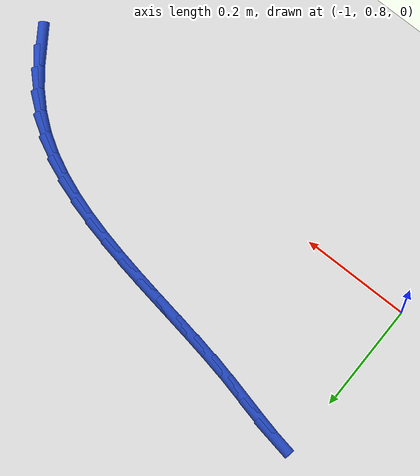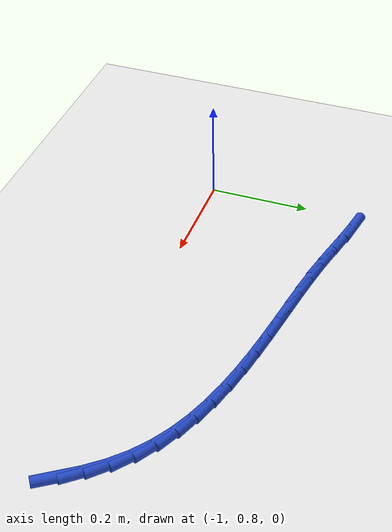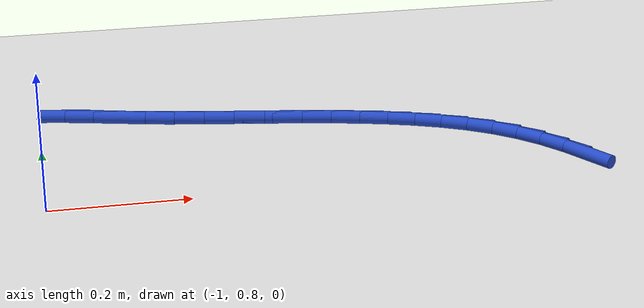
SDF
<sdf version="1.6">
 <world name="default">
  <model name="ground_plane">
   <static>1</static>
   <link name="link">
    <collision name="collision">
     <geometry><plane><normal>0 0 1</normal><size>100 100</size></plane></geometry>
     <surface><friction><ode><mu>100</mu><mu2>50</mu2></ode></friction></surface>
    </collision>
    <visual name="visual">
     <cast_shadows>0</cast_shadows>
     <geometry><plane><normal>0 0 1</normal><size>100 100</size></plane></geometry>
     <material>
      <script><uri>file://media/materials/scripts/gazebo.material</uri><name>Gazebo/WhiteGlow</name></script>
     </material>
    </visual>
   </link>
  </model>
  <model name="line">
   <link name="link_19">
    <pose>-0.21989387060315685 0.8145949696183933 0.01 0 1.57 -0.9886233003249689</pose>
    <collision name="collision">
     <geometry><cylinder><radius>0.01</radius><length>0.08</length></cylinder></geometry>
    </collision>
    <visual name="visual">
     <material>
      <script><name>Gazebo/Blue</name><uri>file://media/materials/scripts/gazebo.material</uri></script>
     </material>
     <geometry><cylinder><radius>0.01</radius><length>0.08</length></cylinder></geometry>
    </visual>
   </link>
   <link name="link_20">
    <pose>-0.24262494258000278 0.849126047410837 0.01 0 1.57 -0.896649380838587</pose>
    <collision name="collision">
     <geometry><cylinder><radius>0.01</radius><length>0.08</length></cylinder></geometry>
    </collision>
    <visual name="visual">
     <material>
      <script><name>Gazebo/Blue</name><uri>file://media/materials/scripts/gazebo.material</uri></script>
     </material>
     <geometry><cylinder><radius>0.01</radius><length>0.08</length></cylinder></geometry>
    </visual>
   </link>
   <link name="link_21">
    <pose>-0.26789773858556115 0.8807555391188143 0.01 0 1.57 -0.7910779130215807</pose>
    <collision name="collision">
     <geometry><cylinder><radius>0.01</radius><length>0.08</length></cylinder></geometry>
    </collision>
    <visual name="visual">
     <material>
      <script><name>Gazebo/Blue</name><uri>file://media/materials/scripts/gazebo.material</uri></script>
     </material>
     <geometry><cylinder><radius>0.01</radius><length>0.08</length></cylinder></geometry>
    </visual>
   </link>
   <link name="link_22">
    <pose>-0.2959661774840193 0.9091446461909903 0.01 0 1.57 -0.6738946662018206</pose>
    <collision name="collision">
     <geometry><cylinder><radius>0.01</radius><length>0.08</length></cylinder></geometry>
    </collision>
    <visual name="visual">
     <material>
      <script><name>Gazebo/Blue</name><uri>file://media/materials/scripts/gazebo.material</uri></script>
     </material>
     <geometry><cylinder><radius>0.01</radius><length>0.08</length></cylinder></geometry>
    </visual>
   </link>
   <link name="link_23">
    <pose>-0.3270639339152699 0.9339797201780062 0.01 0 1.57 -0.5603022033302679</pose>
    <collision name="collision">
     <geometry><cylinder><radius>0.01</radius><length>0.08</length></cylinder></geometry>
    </collision>
    <visual name="visual">
     <material>
      <script><name>Gazebo/Blue</name><uri>file://media/materials/scripts/gazebo.material</uri></script>
     </material>
     <geometry><cylinder><radius>0.01</radius><length>0.08</length></cylinder></geometry>
    </visual>
   </link>
   <link name="link_24">
    <pose>-0.36110937552660766 0.9553388294432368 0.01 0 1.57 -0.4623308494250855</pose>
    <collision name="collision">
     <geometry><cylinder><radius>0.01</radius><length>0.08</length></cylinder></geometry>
    </collision>
    <visual name="visual">
     <material>
      <script><name>Gazebo/Blue</name><uri>file://media/materials/scripts/gazebo.material</uri></script>
     </material>
     <geometry><cylinder><radius>0.01</radius><length>0.08</length></cylinder></geometry>
    </visual>
   </link>
   <link name="link_25">
    <pose>-0.3977716470468816 0.9736096606254708 0.01 0 1.57 -0.38055298743751714</pose>
    <collision name="collision">
     <geometry><cylinder><radius>0.01</radius><length>0.08</length></cylinder></geometry>
    </collision>
    <visual name="visual">
     <material>
      <script><name>Gazebo/Blue</name><uri>file://media/materials/scripts/gazebo.material</uri></script>
     </material>
     <geometry><cylinder><radius>0.01</radius><length>0.08</length></cylinder></geometry>
    </visual>
   </link>
   <link name="link_26">
    <pose>-0.43671309541280307 0.9891883454964381 0.01 0 1.57 -0.31413686297920157</pose>
    <collision name="collision">
     <geometry><cylinder><radius>0.01</radius><length>0.08</length></cylinder></geometry>
    </collision>
    <visual name="visual">
     <material>
      <script><name>Gazebo/Blue</name><uri>file://media/materials/scripts/gazebo.material</uri></script>
     </material>
     <geometry><cylinder><radius>0.01</radius><length>0.08</length></cylinder></geometry>
    </visual>
   </link>
   <link name="link_27">
    <pose>-0.4775960675610829 1.0024710158278691 0.01 0 1.57 -0.2617658397699223</pose>
    <collision name="collision">
     <geometry><cylinder><radius>0.01</radius><length>0.08</length></cylinder></geometry>
    </collision>
    <visual name="visual">
     <material>
      <script><name>Gazebo/Blue</name><uri>file://media/materials/scripts/gazebo.material</uri></script>
     </material>
     <geometry><cylinder><radius>0.01</radius><length>0.08</length></cylinder></geometry>
    </visual>
   </link>
   <link name="link_28">
    <pose>-0.5200829104284322 1.0138538033914943 0.01 0 1.57 -0.22206696672779427</pose>
    <collision name="collision">
     <geometry><cylinder><radius>0.01</radius><length>0.08</length></cylinder></geometry>
    </collision>
    <visual name="visual">
     <material>
      <script><name>Gazebo/Blue</name><uri>file://media/materials/scripts/gazebo.material</uri></script>
     </material>
     <geometry><cylinder><radius>0.01</radius><length>0.08</length></cylinder></geometry>
    </visual>
   </link>
   <link name="link_29">
    <pose>-0.5638359709515619 1.023732839959043 0.01 0 1.57 -0.19384427827279066</pose>
    <collision name="collision">
     <geometry><cylinder><radius>0.01</radius><length>0.08</length></cylinder></geometry>
    </collision>
    <visual name="visual">
     <material>
      <script><name>Gazebo/Blue</name><uri>file://media/materials/scripts/gazebo.material</uri></script>
     </material>
     <geometry><cylinder><radius>0.01</radius><length>0.08</length></cylinder></geometry>
    </visual>
   </link>
   <link name="link_30">
    <pose>-0.608517596067183 1.032504257302246 0.01 0 1.57 -0.17618539849086137</pose>
    <collision name="collision">
     <geometry><cylinder><radius>0.01</radius><length>0.08</length></cylinder></geometry>
    </collision>
    <visual name="visual">
     <material>
      <script><name>Gazebo/Blue</name><uri>file://media/materials/scripts/gazebo.material</uri></script>
     </material>
     <geometry><cylinder><radius>0.01</radius><length>0.08</length></cylinder></geometry>
    </visual>
   </link>
   <link name="link_31">
    <pose>-0.6537901327120067 1.0405641871928337 0.01 0 1.57 -0.16850093379170056</pose>
    <collision name="collision">
     <geometry><cylinder><radius>0.01</radius><length>0.08</length></cylinder></geometry>
    </collision>
    <visual name="visual">
     <material>
      <script><name>Gazebo/Blue</name><uri>file://media/materials/scripts/gazebo.material</uri></script>
     </material>
     <geometry><cylinder><radius>0.01</radius><length>0.08</length></cylinder></geometry>
    </visual>
   </link>
   <link name="link_32">
    <pose>-0.6993159278227441 1.048308761402536 0.01 0 1.57 -0.1705348736723597</pose>
    <collision name="collision">
     <geometry><cylinder><radius>0.01</radius><length>0.08</length></cylinder></geometry>
    </collision>
    <visual name="visual">
     <material>
      <script><name>Gazebo/Blue</name><uri>file://media/materials/scripts/gazebo.material</uri></script>
     </material>
     <geometry><cylinder><radius>0.01</radius><length>0.08</length></cylinder></geometry>
    </visual>
   </link>
   <link name="link_33">
    <pose>-0.7447573283361058 1.056134111703083 0.01 0 1.57 -0.18236637135097228</pose>
    <collision name="collision">
     <geometry><cylinder><radius>0.01</radius><length>0.08</length></cylinder></geometry>
    </collision>
    <visual name="visual">
     <material>
      <script><name>Gazebo/Blue</name><uri>file://media/materials/scripts/gazebo.material</uri></script>
     </material>
     <geometry><cylinder><radius>0.01</radius><length>0.08</length></cylinder></geometry>
    </visual>
   </link>
   <link name="link_34">
    <pose>-0.7897766811888035 1.064436369866205 0.01 0 1.57 -0.2044107261290354</pose>
    <collision name="collision">
     <geometry><cylinder><radius>0.01</radius><length>0.08</length></cylinder></geometry>
    </collision>
    <visual name="visual">
     <material>
      <script><name>Gazebo/Blue</name><uri>file://media/materials/scripts/gazebo.material</uri></script>
     </material>
     <geometry><cylinder><radius>0.01</radius><length>0.08</length></cylinder></geometry>
    </visual>
   </link>
   <link name="link_35">
    <pose>-0.8340363333175475 1.0736116676636323 0.01 0 1.57 -0.2337162961836797</pose>
    <collision name="collision">
     <geometry><cylinder><radius>0.01</radius><length>0.08</length></cylinder></geometry>
    </collision>
    <visual name="visual">
     <material>
      <script><name>Gazebo/Blue</name><uri>file://media/materials/scripts/gazebo.material</uri></script>
     </material>
     <geometry><cylinder><radius>0.01</radius><length>0.08</length></cylinder></geometry>
    </visual>
   </link>
   <link name="link_36">
    <pose>-0.8772731666122037 1.0839049234844345 0.01 0 1.57 -0.24590115572909568</pose>
    <collision name="collision">
     <geometry><cylinder><radius>0.01</radius><length>0.08</length></cylinder></geometry>
    </collision>
    <visual name="visual">
     <material>
      <script><name>Gazebo/Blue</name><uri>file://media/materials/scripts/gazebo.material</uri></script>
     </material>
     <geometry><cylinder><radius>0.01</radius><length>0.08</length></cylinder></geometry>
    </visual>
   </link>
   <link name="link_37">
    <pose>-0.9197185409943457 1.0945578794539088 0.01 0 1.57 -0.2298114242213437</pose>
    <collision name="collision">
     <geometry><cylinder><radius>0.01</radius><length>0.08</length></cylinder></geometry>
    </collision>
    <visual name="visual">
     <material>
      <script><name>Gazebo/Blue</name><uri>file://media/materials/scripts/gazebo.material</uri></script>
     </material>
     <geometry><cylinder><radius>0.01</radius><length>0.08</length></cylinder></geometry>
    </visual>
   </link>
   <link name="link_38">
    <pose>-0.9618051553782825 1.104403809604671 0.01 0 1.57 -0.1845636689146464</pose>
    <collision name="collision">
     <geometry><cylinder><radius>0.01</radius><length>0.08</length></cylinder></geometry>
    </collision>
    <visual name="visual">
     <material>
      <script><name>Gazebo/Blue</name><uri>file://media/materials/scripts/gazebo.material</uri></script>
     </material>
     <geometry><cylinder><radius>0.01</radius><length>0.08</length></cylinder></geometry>
    </visual>
   </link>
  </model>
 </world>
</sdf>
